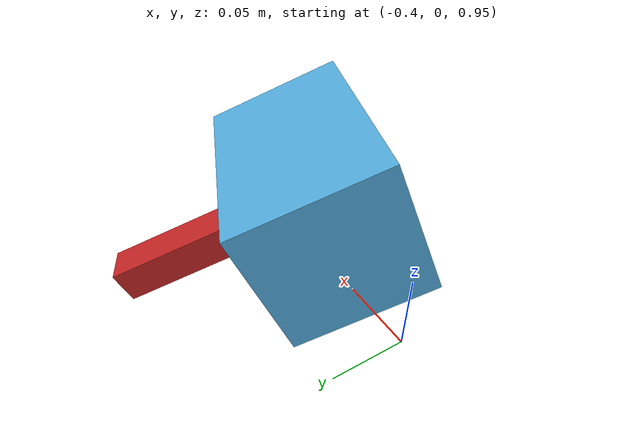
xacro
<?xml version="1.0"?>
<robot xmlns:xacro="http://wiki.ros.org/xacro"  name="camera">

  <!-- Gazebo world link: -->
    <link name="world"/>

    <link name="camera_link">
        <collision>
            <origin xyz="0 0 0" rpy="0 0 0"/>
            <geometry>
                <box size="0.1 0.15 0.1 "/>
            </geometry>
        </collision>
        <visual>
            <origin xyz="0 0 0" rpy="0 0 0"/>
            <geometry>
                <box size="0.1 0.15 0.1 "/>
            </geometry>
        </visual>
        <inertial>
            <mass value="1e-5"/>
            <origin xyz="0 0 0" rpy="0 0 0"/>
            <inertia ixx="1e-6" ixy="0" ixz="0" iyy="1e-6" iyz="0" izz="1e-6" />
        </inertial>
    </link>

    <joint name="world_to_base" type="fixed">
        <origin xyz="-0.3 0 1.0" rpy="0 0.4 1.2"/>
        <parent link="world"/>
        <child link="camera_link"/>
    </joint>

    <link name="lens">
        <collision>
            <origin xyz="0 0 0" rpy="0 0 0"/>
            <geometry>
                <box size="0.2 0.025 0.025"/>
            </geometry>
        </collision>
        <visual>
            <origin xyz="0 0 0" rpy="0 0 0"/>
            <geometry>
                <box size="0.2 0.025 0.025"/>
            </geometry>
        </visual>
        <inertial>
            <mass value="1e-5"/>
            <origin xyz="0 0 0" rpy="0 0 0"/>
            <inertia ixx="1e-6" ixy="0" ixz="0" iyy="1e-6" iyz="0" izz="1e-6"/>
        </inertial>
    </link>
    <joint name="lens_to_camera" type="fixed">
        <origin xyz="0.05 0 0" rpy="0 0 0"/>
        <parent link="camera_link"/>
        <child link="lens"/>
    </joint>
    <link name="camera_link_optical" />
    <joint name="camera_optical_joint" type="fixed">
        <origin xyz="0 0 0" rpy="-1.57 0 -1.57"/>
        <parent link="camera_link"/>
        <child link="camera_link_optical"/>
    </joint>
    <gazebo reference="camera_link">
        <sensor type="depth" name="realsense">
	        <always_on>1</always_on>
	        <visualize>true</visualize>
	        <update_rate>0</update_rate>
	        <camera>
	            <horizontal_fov>1.047198</horizontal_fov>
	            <image>
	                <width>640</width>
	                <height>640</height>
	                <format>B8G8R8</format>  <!--Changed format since channels were inverted, to go back, change to R8G8B8-->
	            </image>
	            <clip>
	                <near>0.01</near>
	                <far>3</far>
	            </clip>
	        </camera>
	        <plugin name="camera_controller" filename="libgazebo_ros_camera.so">
	            <baseline>0.2</baseline>
	            <alwaysOn>true</alwaysOn>
	            <updateRate>0.0</updateRate>
	            <cameraName>/realsense</cameraName>
	            <imageTopicName>/realsense/color/image_raw</imageTopicName>
	            <cameraInfoTopicName>/realsense/color/camera_info</cameraInfoTopicName>
	            <depthImageTopicName>/realsense/depth/image_raw</depthImageTopicName>
	            <depthImageInfoTopicName>/realsense/depth/camera_info</depthImageInfoTopicName>
	            <pointCloudTopicName>/realsense/depth/points</pointCloudTopicName>
	            <frameName>camera_link_optical</frameName>
	            <pointCloudCutoff>0.1</pointCloudCutoff>
	            <pointCloudCutoffMax>3</pointCloudCutoffMax>
	            <distortionK1>0</distortionK1>
	            <distortionK2>0</distortionK2>
	            <distortionK3>0</distortionK3>
	            <distortionT1>0</distortionT1>
	            <distortionT2>0</distortionT2>
	            <CxPrime>0</CxPrime>
	            <Cx>0</Cx>
	            <Cy>0</Cy>
	            <focalLength>0</focalLength>
	            <hackBaseline>0</hackBaseline>
	        </plugin>
        </sensor>
    </gazebo>
    <gazebo reference="lens">
        <mu1>0.2</mu1>
        <mu2>0.2</mu2>
        <material> Gazebo/Red </material>
    </gazebo>

</robot>
